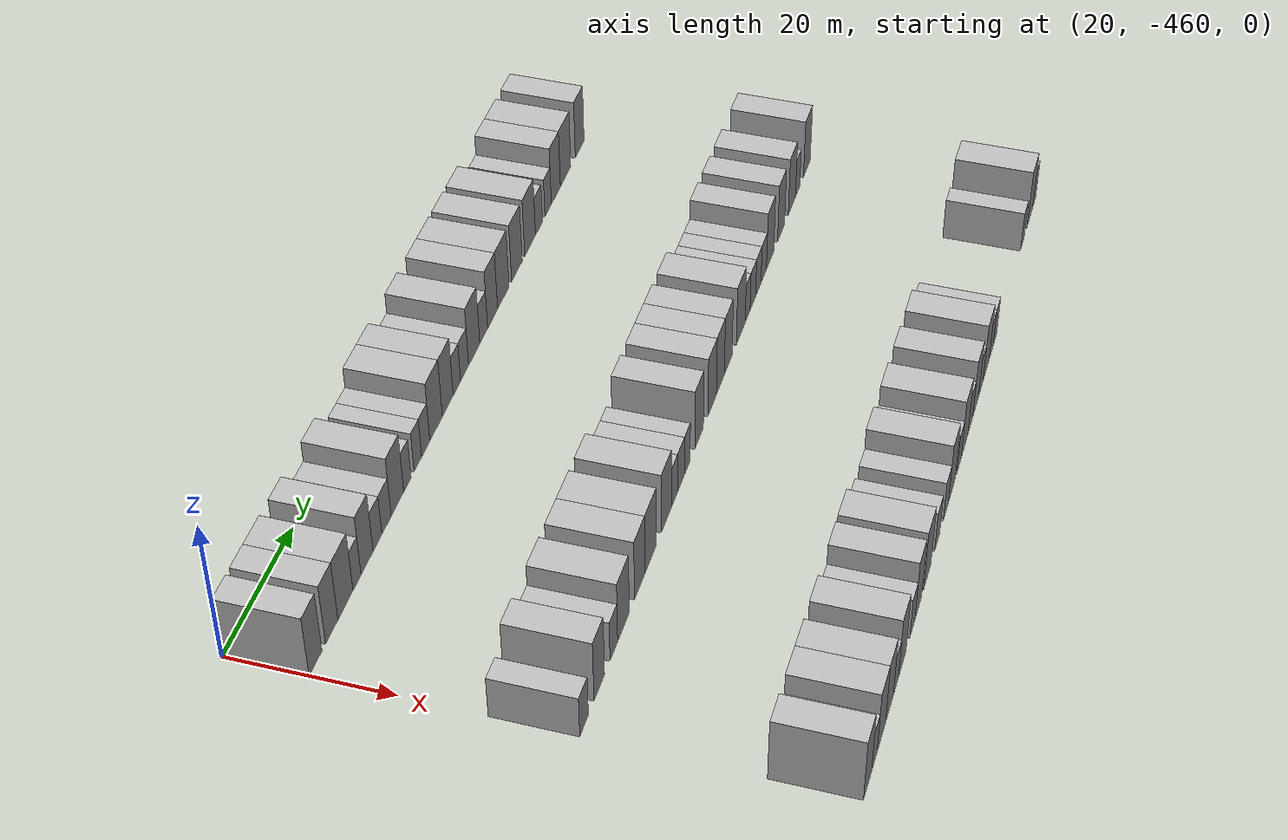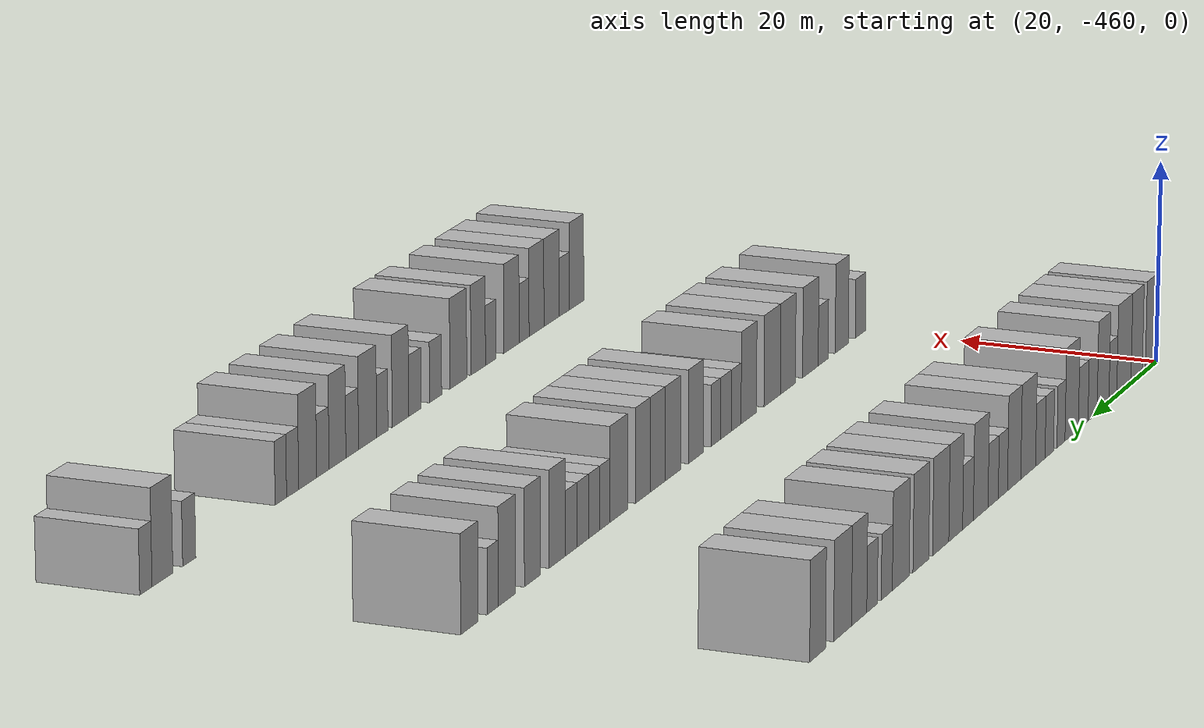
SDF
<sdf version="1.6">
 <world name="default">
  <model name="building_1">
   <static>1</static>
   <pose>25.0000 -458.1524 0 0.000000 0.000000 0.000000</pose>
   <link name="link">
    <pose>0 0 4.50 0 0 0</pose>
    <collision name="collision"><geometry><box><size>10.0000 3.6952 9.0000</size></box></geometry></collision>
    <visual name="visual">
     <cast_shadows>0</cast_shadows>
     <geometry><box><size>10.0000 3.6952 9.0000</size></box></geometry>
     <material>
      <script>
       <uri>model://HANNAS_wall/materials/scripts</uri>
       <uri>model://HANNAS_wall/materials/textures</uri>
       <name>vrc/HANNAS_wall</name>
      </script>
     </material>
    </visual>
   </link>
  </model>
  <model name="building_2">
   <static>1</static>
   <pose>25.0000 -453.4959 0 0.000000 0.000000 0.000000</pose>
   <link name="link">
    <pose>0 0 4.50 0 0 0</pose>
    <collision name="collision"><geometry><box><size>10.0000 3.6178 9.0000</size></box></geometry></collision>
    <visual name="visual">
     <cast_shadows>0</cast_shadows>
     <geometry><box><size>10.0000 3.6178 9.0000</size></box></geometry>
     <material>
      <script>
       <uri>model://HANNAS_wall/materials/scripts</uri>
       <uri>model://HANNAS_wall/materials/textures</uri>
       <name>vrc/HANNAS_wall</name>
      </script>
     </material>
    </visual>
   </link>
  </model>
  <model name="building_3">
   <static>1</static>
   <pose>25.0000 -449.4425 0 0.000000 0.000000 0.000000</pose>
   <link name="link">
    <pose>0 0 4.50 0 0 0</pose>
    <collision name="collision"><geometry><box><size>10.0000 4.4890 9.0000</size></box></geometry></collision>
    <visual name="visual">
     <cast_shadows>0</cast_shadows>
     <geometry><box><size>10.0000 4.4890 9.0000</size></box></geometry>
     <material>
      <script>
       <uri>model://HANNAS_wall/materials/scripts</uri>
       <uri>model://HANNAS_wall/materials/textures</uri>
       <name>vrc/HANNAS_wall</name>
      </script>
     </material>
    </visual>
   </link>
  </model>
  <model name="building_4">
   <static>1</static>
   <pose>25.0000 -445.9746 0 0.000000 0.000000 0.000000</pose>
   <link name="link">
    <pose>0 0 3.00 0 0 0</pose>
    <collision name="collision"><geometry><box><size>10.0000 2.4467 6.0000</size></box></geometry></collision>
    <visual name="visual">
     <cast_shadows>0</cast_shadows>
     <geometry><box><size>10.0000 2.4467 6.0000</size></box></geometry>
     <material>
      <script>
       <uri>model://HANNAS_wall/materials/scripts</uri>
       <uri>model://HANNAS_wall/materials/textures</uri>
       <name>vrc/HANNAS_wall</name>
      </script>
     </material>
    </visual>
   </link>
  </model>
  <model name="building_5">
   <static>1</static>
   <pose>25.0000 -442.9022 0 0.000000 0.000000 0.000000</pose>
   <link name="link">
    <pose>0 0 4.50 0 0 0</pose>
    <collision name="collision"><geometry><box><size>10.0000 3.6982 9.0000</size></box></geometry></collision>
    <visual name="visual">
     <cast_shadows>0</cast_shadows>
     <geometry><box><size>10.0000 3.6982 9.0000</size></box></geometry>
     <material>
      <script>
       <uri>model://HANNAS_wall/materials/scripts</uri>
       <uri>model://HANNAS_wall/materials/textures</uri>
       <name>vrc/HANNAS_wall</name>
      </script>
     </material>
    </visual>
   </link>
  </model>
  <model name="building_6">
   <static>1</static>
   <pose>25.0000 -439.6706 0 0.000000 0.000000 0.000000</pose>
   <link name="link">
    <pose>0 0 3.00 0 0 0</pose>
    <collision name="collision"><geometry><box><size>10.0000 2.7650 6.0000</size></box></geometry></collision>
    <visual name="visual">
     <cast_shadows>0</cast_shadows>
     <geometry><box><size>10.0000 2.7650 6.0000</size></box></geometry>
     <material>
      <script>
       <uri>model://HANNAS_wall/materials/scripts</uri>
       <uri>model://HANNAS_wall/materials/textures</uri>
       <name>vrc/HANNAS_wall</name>
      </script>
     </material>
    </visual>
   </link>
  </model>
  <model name="building_7">
   <static>1</static>
   <pose>25.0000 -436.8086 0 0.000000 0.000000 0.000000</pose>
   <link name="link">
    <pose>0 0 3.00 0 0 0</pose>
    <collision name="collision"><geometry><box><size>10.0000 2.9590 6.0000</size></box></geometry></collision>
    <visual name="visual">
     <cast_shadows>0</cast_shadows>
     <geometry><box><size>10.0000 2.9590 6.0000</size></box></geometry>
     <material>
      <script>
       <uri>model://HANNAS_wall/materials/scripts</uri>
       <uri>model://HANNAS_wall/materials/textures</uri>
       <name>vrc/HANNAS_wall</name>
      </script>
     </material>
    </visual>
   </link>
  </model>
  <model name="building_8">
   <static>1</static>
   <pose>25.0000 -433.3091 0 0.000000 0.000000 0.000000</pose>
   <link name="link">
    <pose>0 0 4.50 0 0 0</pose>
    <collision name="collision"><geometry><box><size>10.0000 4.0399 9.0000</size></box></geometry></collision>
    <visual name="visual">
     <cast_shadows>0</cast_shadows>
     <geometry><box><size>10.0000 4.0399 9.0000</size></box></geometry>
     <material>
      <script>
       <uri>model://HANNAS_wall/materials/scripts</uri>
       <uri>model://HANNAS_wall/materials/textures</uri>
       <name>vrc/HANNAS_wall</name>
      </script>
     </material>
    </visual>
   </link>
  </model>
  <model name="building_9">
   <static>1</static>
   <pose>25.0000 -430.0815 0 0.000000 0.000000 0.000000</pose>
   <link name="link">
    <pose>0 0 3.00 0 0 0</pose>
    <collision name="collision"><geometry><box><size>10.0000 2.4153 6.0000</size></box></geometry></collision>
    <visual name="visual">
     <cast_shadows>0</cast_shadows>
     <geometry><box><size>10.0000 2.4153 6.0000</size></box></geometry>
     <material>
      <script>
       <uri>model://HANNAS_wall/materials/scripts</uri>
       <uri>model://HANNAS_wall/materials/textures</uri>
       <name>vrc/HANNAS_wall</name>
      </script>
     </material>
    </visual>
   </link>
  </model>
  <model name="building_10">
   <static>1</static>
   <pose>25.0000 -426.6182 0 0.000000 0.000000 0.000000</pose>
   <link name="link">
    <pose>0 0 3.00 0 0 0</pose>
    <collision name="collision"><geometry><box><size>10.0000 2.5112 6.0000</size></box></geometry></collision>
    <visual name="visual">
     <cast_shadows>0</cast_shadows>
     <geometry><box><size>10.0000 2.5112 6.0000</size></box></geometry>
     <material>
      <script>
       <uri>model://HANNAS_wall/materials/scripts</uri>
       <uri>model://HANNAS_wall/materials/textures</uri>
       <name>vrc/HANNAS_wall</name>
      </script>
     </material>
    </visual>
   </link>
  </model>
  <model name="building_11">
   <static>1</static>
   <pose>25.0000 -423.9730 0 0.000000 0.000000 0.000000</pose>
   <link name="link">
    <pose>0 0 3.00 0 0 0</pose>
    <collision name="collision"><geometry><box><size>10.0000 2.7792 6.0000</size></box></geometry></collision>
    <visual name="visual">
     <cast_shadows>0</cast_shadows>
     <geometry><box><size>10.0000 2.7792 6.0000</size></box></geometry>
     <material>
      <script>
       <uri>model://HANNAS_wall/materials/scripts</uri>
       <uri>model://HANNAS_wall/materials/textures</uri>
       <name>vrc/HANNAS_wall</name>
      </script>
     </material>
    </visual>
   </link>
  </model>
  <model name="building_12">
   <static>1</static>
   <pose>25.0000 -420.4237 0 0.000000 0.000000 0.000000</pose>
   <link name="link">
    <pose>0 0 4.50 0 0 0</pose>
    <collision name="collision"><geometry><box><size>10.0000 4.3195 9.0000</size></box></geometry></collision>
    <visual name="visual">
     <cast_shadows>0</cast_shadows>
     <geometry><box><size>10.0000 4.3195 9.0000</size></box></geometry>
     <material>
      <script>
       <uri>model://HANNAS_wall/materials/scripts</uri>
       <uri>model://HANNAS_wall/materials/textures</uri>
       <name>vrc/HANNAS_wall</name>
      </script>
     </material>
    </visual>
   </link>
  </model>
  <model name="building_13">
   <static>1</static>
   <pose>25.0000 -416.3539 0 0.000000 0.000000 0.000000</pose>
   <link name="link">
    <pose>0 0 4.50 0 0 0</pose>
    <collision name="collision"><geometry><box><size>10.0000 3.8201 9.0000</size></box></geometry></collision>
    <visual name="visual">
     <cast_shadows>0</cast_shadows>
     <geometry><box><size>10.0000 3.8201 9.0000</size></box></geometry>
     <material>
      <script>
       <uri>model://HANNAS_wall/materials/scripts</uri>
       <uri>model://HANNAS_wall/materials/textures</uri>
       <name>vrc/HANNAS_wall</name>
      </script>
     </material>
    </visual>
   </link>
  </model>
  <model name="building_14">
   <static>1</static>
   <pose>25.0000 -413.1420 0 0.000000 0.000000 0.000000</pose>
   <link name="link">
    <pose>0 0 3.00 0 0 0</pose>
    <collision name="collision"><geometry><box><size>10.0000 2.6039 6.0000</size></box></geometry></collision>
    <visual name="visual">
     <cast_shadows>0</cast_shadows>
     <geometry><box><size>10.0000 2.6039 6.0000</size></box></geometry>
     <material>
      <script>
       <uri>model://HANNAS_wall/materials/scripts</uri>
       <uri>model://HANNAS_wall/materials/textures</uri>
       <name>vrc/HANNAS_wall</name>
      </script>
     </material>
    </visual>
   </link>
  </model>
  <model name="building_15">
   <static>1</static>
   <pose>25.0000 -410.3872 0 0.000000 0.000000 0.000000</pose>
   <link name="link">
    <pose>0 0 3.00 0 0 0</pose>
    <collision name="collision"><geometry><box><size>10.0000 2.9057 6.0000</size></box></geometry></collision>
    <visual name="visual">
     <cast_shadows>0</cast_shadows>
     <geometry><box><size>10.0000 2.9057 6.0000</size></box></geometry>
     <material>
      <script>
       <uri>model://HANNAS_wall/materials/scripts</uri>
       <uri>model://HANNAS_wall/materials/textures</uri>
       <name>vrc/HANNAS_wall</name>
      </script>
     </material>
    </visual>
   </link>
  </model>
  <model name="building_16">
   <static>1</static>
   <pose>25.0000 -406.8814 0 0.000000 0.000000 0.000000</pose>
   <link name="link">
    <pose>0 0 4.50 0 0 0</pose>
    <collision name="collision"><geometry><box><size>10.0000 4.1057 9.0000</size></box></geometry></collision>
    <visual name="visual">
     <cast_shadows>0</cast_shadows>
     <geometry><box><size>10.0000 4.1057 9.0000</size></box></geometry>
     <material>
      <script>
       <uri>model://HANNAS_wall/materials/scripts</uri>
       <uri>model://HANNAS_wall/materials/textures</uri>
       <name>vrc/HANNAS_wall</name>
      </script>
     </material>
    </visual>
   </link>
  </model>
  <model name="building_17">
   <static>1</static>
   <pose>25.0000 -403.3574 0 0.000000 0.000000 0.000000</pose>
   <link name="link">
    <pose>0 0 3.00 0 0 0</pose>
    <collision name="collision"><geometry><box><size>10.0000 2.9423 6.0000</size></box></geometry></collision>
    <visual name="visual">
     <cast_shadows>0</cast_shadows>
     <geometry><box><size>10.0000 2.9423 6.0000</size></box></geometry>
     <material>
      <script>
       <uri>model://HANNAS_wall/materials/scripts</uri>
       <uri>model://HANNAS_wall/materials/textures</uri>
       <name>vrc/HANNAS_wall</name>
      </script>
     </material>
    </visual>
   </link>
  </model>
  <model name="building_18">
   <static>1</static>
   <pose>25.0000 -399.9926 0 0.000000 0.000000 0.000000</pose>
   <link name="link">
    <pose>0 0 4.50 0 0 0</pose>
    <collision name="collision"><geometry><box><size>10.0000 3.7872 9.0000</size></box></geometry></collision>
    <visual name="visual">
     <cast_shadows>0</cast_shadows>
     <geometry><box><size>10.0000 3.7872 9.0000</size></box></geometry>
     <material>
      <script>
       <uri>model://HANNAS_wall/materials/scripts</uri>
       <uri>model://HANNAS_wall/materials/textures</uri>
       <name>vrc/HANNAS_wall</name>
      </script>
     </material>
    </visual>
   </link>
  </model>
  <model name="building_19">
   <static>1</static>
   <pose>25.0000 -395.8993 0 0.000000 0.000000 0.000000</pose>
   <link name="link">
    <pose>0 0 4.50 0 0 0</pose>
    <collision name="collision"><geometry><box><size>10.0000 4.3993 9.0000</size></box></geometry></collision>
    <visual name="visual">
     <cast_shadows>0</cast_shadows>
     <geometry><box><size>10.0000 4.3993 9.0000</size></box></geometry>
     <material>
      <script>
       <uri>model://HANNAS_wall/materials/scripts</uri>
       <uri>model://HANNAS_wall/materials/textures</uri>
       <name>vrc/HANNAS_wall</name>
      </script>
     </material>
    </visual>
   </link>
  </model>
  <model name="building_20">
   <static>1</static>
   <pose>25.0000 -390.5978 0 0.000000 0.000000 0.000000</pose>
   <link name="link">
    <pose>0 0 4.50 0 0 0</pose>
    <collision name="collision"><geometry><box><size>10.0000 4.2038 9.0000</size></box></geometry></collision>
    <visual name="visual">
     <cast_shadows>0</cast_shadows>
     <geometry><box><size>10.0000 4.2038 9.0000</size></box></geometry>
     <material>
      <script>
       <uri>model://HANNAS_wall/materials/scripts</uri>
       <uri>model://HANNAS_wall/materials/textures</uri>
       <name>vrc/HANNAS_wall</name>
      </script>
     </material>
    </visual>
   </link>
  </model>
  <model name="building_21">
   <static>1</static>
   <pose>25.0000 -385.3042 0 0.000000 0.000000 0.000000</pose>
   <link name="link">
    <pose>0 0 4.50 0 0 0</pose>
    <collision name="collision"><geometry><box><size>10.0000 4.3834 9.0000</size></box></geometry></collision>
    <visual name="visual">
     <cast_shadows>0</cast_shadows>
     <geometry><box><size>10.0000 4.3834 9.0000</size></box></geometry>
     <material>
      <script>
       <uri>model://HANNAS_wall/materials/scripts</uri>
       <uri>model://HANNAS_wall/materials/textures</uri>
       <name>vrc/HANNAS_wall</name>
      </script>
     </material>
    </visual>
   </link>
  </model>
  <model name="building_22">
   <static>1</static>
   <pose>25.0000 -381.6776 0 0.000000 0.000000 0.000000</pose>
   <link name="link">
    <pose>0 0 3.00 0 0 0</pose>
    <collision name="collision"><geometry><box><size>10.0000 2.8699 6.0000</size></box></geometry></collision>
    <visual name="visual">
     <cast_shadows>0</cast_shadows>
     <geometry><box><size>10.0000 2.8699 6.0000</size></box></geometry>
     <material>
      <script>
       <uri>model://HANNAS_wall/materials/scripts</uri>
       <uri>model://HANNAS_wall/materials/textures</uri>
       <name>vrc/HANNAS_wall</name>
      </script>
     </material>
    </visual>
   </link>
  </model>
  <model name="building_23">
   <static>1</static>
   <pose>25.0000 -377.8964 0 0.000000 0.000000 0.000000</pose>
   <link name="link">
    <pose>0 0 3.00 0 0 0</pose>
    <collision name="collision"><geometry><box><size>10.0000 2.6924 6.0000</size></box></geometry></collision>
    <visual name="visual">
     <cast_shadows>0</cast_shadows>
     <geometry><box><size>10.0000 2.6924 6.0000</size></box></geometry>
     <material>
      <script>
       <uri>model://HANNAS_wall/materials/scripts</uri>
       <uri>model://HANNAS_wall/materials/textures</uri>
       <name>vrc/HANNAS_wall</name>
      </script>
     </material>
    </visual>
   </link>
  </model>
  <model name="building_24">
   <static>1</static>
   <pose>25.0000 -374.6292 0 0.000000 0.000000 0.000000</pose>
   <link name="link">
    <pose>0 0 4.50 0 0 0</pose>
    <collision name="collision"><geometry><box><size>10.0000 3.8420 9.0000</size></box></geometry></collision>
    <visual name="visual">
     <cast_shadows>0</cast_shadows>
     <geometry><box><size>10.0000 3.8420 9.0000</size></box></geometry>
     <material>
      <script>
       <uri>model://HANNAS_wall/materials/scripts</uri>
       <uri>model://HANNAS_wall/materials/textures</uri>
       <name>vrc/HANNAS_wall</name>
      </script>
     </material>
    </visual>
   </link>
  </model>
  <model name="building_25">
   <static>1</static>
   <pose>25.0000 -370.4790 0 0.000000 0.000000 0.000000</pose>
   <link name="link">
    <pose>0 0 4.50 0 0 0</pose>
    <collision name="collision"><geometry><box><size>10.0000 4.4584 9.0000</size></box></geometry></collision>
    <visual name="visual">
     <cast_shadows>0</cast_shadows>
     <geometry><box><size>10.0000 4.4584 9.0000</size></box></geometry>
     <material>
      <script>
       <uri>model://HANNAS_wall/materials/scripts</uri>
       <uri>model://HANNAS_wall/materials/textures</uri>
       <name>vrc/HANNAS_wall</name>
      </script>
     </material>
    </visual>
   </link>
  </model>
  <model name="building_26">
   <static>1</static>
   <pose>25.0000 -364.3102 0 0.000000 0.000000 0.000000</pose>
   <link name="link">
    <pose>0 0 4.50 0 0 0</pose>
    <collision name="collision"><geometry><box><size>10.0000 3.8792 9.0000</size></box></geometry></collision>
    <visual name="visual">
     <cast_shadows>0</cast_shadows>
     <geometry><box><size>10.0000 3.8792 9.0000</size></box></geometry>
     <material>
      <script>
       <uri>model://HANNAS_wall/materials/scripts</uri>
       <uri>model://HANNAS_wall/materials/textures</uri>
       <name>vrc/HANNAS_wall</name>
      </script>
     </material>
    </visual>
   </link>
  </model>
  <model name="building_227">
   <static>1</static>
   <pose>55.0000 -458.5022 0 0.000000 0.000000 0.000000</pose>
   <link name="link">
    <pose>0 0 3.00 0 0 0</pose>
    <collision name="collision"><geometry><box><size>10.0000 2.9957 6.0000</size></box></geometry></collision>
    <visual name="visual">
     <cast_shadows>0</cast_shadows>
     <geometry><box><size>10.0000 2.9957 6.0000</size></box></geometry>
     <material>
      <script>
       <uri>model://HANNAS_wall/materials/scripts</uri>
       <uri>model://HANNAS_wall/materials/textures</uri>
       <name>vrc/HANNAS_wall</name>
      </script>
     </material>
    </visual>
   </link>
  </model>
  <model name="building_228">
   <static>1</static>
   <pose>55.0000 -453.1236 0 0.000000 0.000000 0.000000</pose>
   <link name="link">
    <pose>0 0 4.50 0 0 0</pose>
    <collision name="collision"><geometry><box><size>10.0000 3.7614 9.0000</size></box></geometry></collision>
    <visual name="visual">
     <cast_shadows>0</cast_shadows>
     <geometry><box><size>10.0000 3.7614 9.0000</size></box></geometry>
     <material>
      <script>
       <uri>model://HANNAS_wall/materials/scripts</uri>
       <uri>model://HANNAS_wall/materials/textures</uri>
       <name>vrc/HANNAS_wall</name>
      </script>
     </material>
    </visual>
   </link>
  </model>
  <model name="building_229">
   <static>1</static>
   <pose>55.0000 -447.8356 0 0.000000 0.000000 0.000000</pose>
   <link name="link">
    <pose>0 0 3.00 0 0 0</pose>
    <collision name="collision"><geometry><box><size>10.0000 2.8146 6.0000</size></box></geometry></collision>
    <visual name="visual">
     <cast_shadows>0</cast_shadows>
     <geometry><box><size>10.0000 2.8146 6.0000</size></box></geometry>
     <material>
      <script>
       <uri>model://HANNAS_wall/materials/scripts</uri>
       <uri>model://HANNAS_wall/materials/textures</uri>
       <name>vrc/HANNAS_wall</name>
      </script>
     </material>
    </visual>
   </link>
  </model>
  <model name="building_230">
   <static>1</static>
   <pose>55.0000 -444.2444 0 0.000000 0.000000 0.000000</pose>
   <link name="link">
    <pose>0 0 4.50 0 0 0</pose>
    <collision name="collision"><geometry><box><size>10.0000 4.3679 9.0000</size></box></geometry></collision>
    <visual name="visual">
     <cast_shadows>0</cast_shadows>
     <geometry><box><size>10.0000 4.3679 9.0000</size></box></geometry>
     <material>
      <script>
       <uri>model://HANNAS_wall/materials/scripts</uri>
       <uri>model://HANNAS_wall/materials/textures</uri>
       <name>vrc/HANNAS_wall</name>
      </script>
     </material>
    </visual>
   </link>
  </model>
  <model name="building_231">
   <static>1</static>
   <pose>55.0000 -438.0049 0 0.000000 0.000000 0.000000</pose>
   <link name="link">
    <pose>0 0 4.50 0 0 0</pose>
    <collision name="collision"><geometry><box><size>10.0000 4.1109 9.0000</size></box></geometry></collision>
    <visual name="visual">
     <cast_shadows>0</cast_shadows>
     <geometry><box><size>10.0000 4.1109 9.0000</size></box></geometry>
     <material>
      <script>
       <uri>model://HANNAS_wall/materials/scripts</uri>
       <uri>model://HANNAS_wall/materials/textures</uri>
       <name>vrc/HANNAS_wall</name>
      </script>
     </material>
    </visual>
   </link>
  </model>
  <model name="building_232">
   <static>1</static>
   <pose>55.0000 -433.7033 0 0.000000 0.000000 0.000000</pose>
   <link name="link">
    <pose>0 0 4.50 0 0 0</pose>
    <collision name="collision"><geometry><box><size>10.0000 4.4923 9.0000</size></box></geometry></collision>
    <visual name="visual">
     <cast_shadows>0</cast_shadows>
     <geometry><box><size>10.0000 4.4923 9.0000</size></box></geometry>
     <material>
      <script>
       <uri>model://HANNAS_wall/materials/scripts</uri>
       <uri>model://HANNAS_wall/materials/textures</uri>
       <name>vrc/HANNAS_wall</name>
      </script>
     </material>
    </visual>
   </link>
  </model>
  <model name="building_233">
   <static>1</static>
   <pose>55.0000 -427.4035 0 0.000000 0.000000 0.000000</pose>
   <link name="link">
    <pose>0 0 4.50 0 0 0</pose>
    <collision name="collision"><geometry><box><size>10.0000 4.1073 9.0000</size></box></geometry></collision>
    <visual name="visual">
     <cast_shadows>0</cast_shadows>
     <geometry><box><size>10.0000 4.1073 9.0000</size></box></geometry>
     <material>
      <script>
       <uri>model://HANNAS_wall/materials/scripts</uri>
       <uri>model://HANNAS_wall/materials/textures</uri>
       <name>vrc/HANNAS_wall</name>
      </script>
     </material>
    </visual>
   </link>
  </model>
  <model name="building_234">
   <static>1</static>
   <pose>55.0000 -424.0857 0 0.000000 0.000000 0.000000</pose>
   <link name="link">
    <pose>0 0 3.00 0 0 0</pose>
    <collision name="collision"><geometry><box><size>10.0000 2.5282 6.0000</size></box></geometry></collision>
    <visual name="visual">
     <cast_shadows>0</cast_shadows>
     <geometry><box><size>10.0000 2.5282 6.0000</size></box></geometry>
     <material>
      <script>
       <uri>model://HANNAS_wall/materials/scripts</uri>
       <uri>model://HANNAS_wall/materials/textures</uri>
       <name>vrc/HANNAS_wall</name>
      </script>
     </material>
    </visual>
   </link>
  </model>
  <model name="building_235">
   <static>1</static>
   <pose>55.0000 -421.3431 0 0.000000 0.000000 0.000000</pose>
   <link name="link">
    <pose>0 0 3.00 0 0 0</pose>
    <collision name="collision"><geometry><box><size>10.0000 2.9572 6.0000</size></box></geometry></collision>
    <visual name="visual">
     <cast_shadows>0</cast_shadows>
     <geometry><box><size>10.0000 2.9572 6.0000</size></box></geometry>
     <material>
      <script>
       <uri>model://HANNAS_wall/materials/scripts</uri>
       <uri>model://HANNAS_wall/materials/textures</uri>
       <name>vrc/HANNAS_wall</name>
      </script>
     </material>
    </visual>
   </link>
  </model>
  <model name="building_236">
   <static>1</static>
   <pose>55.0000 -418.6470 0 0.000000 0.000000 0.000000</pose>
   <link name="link">
    <pose>0 0 3.00 0 0 0</pose>
    <collision name="collision"><geometry><box><size>10.0000 2.4350 6.0000</size></box></geometry></collision>
    <visual name="visual">
     <cast_shadows>0</cast_shadows>
     <geometry><box><size>10.0000 2.4350 6.0000</size></box></geometry>
     <material>
      <script>
       <uri>model://HANNAS_wall/materials/scripts</uri>
       <uri>model://HANNAS_wall/materials/textures</uri>
       <name>vrc/HANNAS_wall</name>
      </script>
     </material>
    </visual>
   </link>
  </model>
  <model name="building_237">
   <static>1</static>
   <pose>55.0000 -413.5474 0 0.000000 0.000000 0.000000</pose>
   <link name="link">
    <pose>0 0 4.50 0 0 0</pose>
    <collision name="collision"><geometry><box><size>10.0000 3.7642 9.0000</size></box></geometry></collision>
    <visual name="visual">
     <cast_shadows>0</cast_shadows>
     <geometry><box><size>10.0000 3.7642 9.0000</size></box></geometry>
     <material>
      <script>
       <uri>model://HANNAS_wall/materials/scripts</uri>
       <uri>model://HANNAS_wall/materials/textures</uri>
       <name>vrc/HANNAS_wall</name>
      </script>
     </material>
    </visual>
   </link>
  </model>
  <model name="building_238">
   <static>1</static>
   <pose>55.0000 -407.7416 0 0.000000 0.000000 0.000000</pose>
   <link name="link">
    <pose>0 0 4.50 0 0 0</pose>
    <collision name="collision"><geometry><box><size>10.0000 3.8473 9.0000</size></box></geometry></collision>
    <visual name="visual">
     <cast_shadows>0</cast_shadows>
     <geometry><box><size>10.0000 3.8473 9.0000</size></box></geometry>
     <material>
      <script>
       <uri>model://HANNAS_wall/materials/scripts</uri>
       <uri>model://HANNAS_wall/materials/textures</uri>
       <name>vrc/HANNAS_wall</name>
      </script>
     </material>
    </visual>
   </link>
  </model>
  <model name="building_239">
   <static>1</static>
   <pose>55.0000 -403.9809 0 0.000000 0.000000 0.000000</pose>
   <link name="link">
    <pose>0 0 4.50 0 0 0</pose>
    <collision name="collision"><geometry><box><size>10.0000 3.6741 9.0000</size></box></geometry></collision>
    <visual name="visual">
     <cast_shadows>0</cast_shadows>
     <geometry><box><size>10.0000 3.6741 9.0000</size></box></geometry>
     <material>
      <script>
       <uri>model://HANNAS_wall/materials/scripts</uri>
       <uri>model://HANNAS_wall/materials/textures</uri>
       <name>vrc/HANNAS_wall</name>
      </script>
     </material>
    </visual>
   </link>
  </model>
  <model name="building_240">
   <static>1</static>
   <pose>55.0000 -400.3345 0 0.000000 0.000000 0.000000</pose>
   <link name="link">
    <pose>0 0 4.50 0 0 0</pose>
    <collision name="collision"><geometry><box><size>10.0000 3.6187 9.0000</size></box></geometry></collision>
    <visual name="visual">
     <cast_shadows>0</cast_shadows>
     <geometry><box><size>10.0000 3.6187 9.0000</size></box></geometry>
     <material>
      <script>
       <uri>model://HANNAS_wall/materials/scripts</uri>
       <uri>model://HANNAS_wall/materials/textures</uri>
       <name>vrc/HANNAS_wall</name>
      </script>
     </material>
    </visual>
   </link>
  </model>
  <model name="building_241">
   <static>1</static>
   <pose>55.0000 -394.4001 0 0.000000 0.000000 0.000000</pose>
   <link name="link">
    <pose>0 0 4.50 0 0 0</pose>
    <collision name="collision"><geometry><box><size>10.0000 4.2503 9.0000</size></box></geometry></collision>
    <visual name="visual">
     <cast_shadows>0</cast_shadows>
     <geometry><box><size>10.0000 4.2503 9.0000</size></box></geometry>
     <material>
      <script>
       <uri>model://HANNAS_wall/materials/scripts</uri>
       <uri>model://HANNAS_wall/materials/textures</uri>
       <name>vrc/HANNAS_wall</name>
      </script>
     </material>
    </visual>
   </link>
  </model>
  <model name="building_242">
   <static>1</static>
   <pose>55.0000 -391.0721 0 0.000000 0.000000 0.000000</pose>
   <link name="link">
    <pose>0 0 3.00 0 0 0</pose>
    <collision name="collision"><geometry><box><size>10.0000 2.4057 6.0000</size></box></geometry></collision>
    <visual name="visual">
     <cast_shadows>0</cast_shadows>
     <geometry><box><size>10.0000 2.4057 6.0000</size></box></geometry>
     <material>
      <script>
       <uri>model://HANNAS_wall/materials/scripts</uri>
       <uri>model://HANNAS_wall/materials/textures</uri>
       <name>vrc/HANNAS_wall</name>
      </script>
     </material>
    </visual>
   </link>
  </model>
  <model name="building_243">
   <static>1</static>
   <pose>55.0000 -388.5110 0 0.000000 0.000000 0.000000</pose>
   <link name="link">
    <pose>0 0 3.00 0 0 0</pose>
    <collision name="collision"><geometry><box><size>10.0000 2.7165 6.0000</size></box></geometry></collision>
    <visual name="visual">
     <cast_shadows>0</cast_shadows>
     <geometry><box><size>10.0000 2.7165 6.0000</size></box></geometry>
     <material>
      <script>
       <uri>model://HANNAS_wall/materials/scripts</uri>
       <uri>model://HANNAS_wall/materials/textures</uri>
       <name>vrc/HANNAS_wall</name>
      </script>
     </material>
    </visual>
   </link>
  </model>
  <model name="building_244">
   <static>1</static>
   <pose>55.0000 -385.8160 0 0.000000 0.000000 0.000000</pose>
   <link name="link">
    <pose>0 0 3.00 0 0 0</pose>
    <collision name="collision"><geometry><box><size>10.0000 2.6734 6.0000</size></box></geometry></collision>
    <visual name="visual">
     <cast_shadows>0</cast_shadows>
     <geometry><box><size>10.0000 2.6734 6.0000</size></box></geometry>
     <material>
      <script>
       <uri>model://HANNAS_wall/materials/scripts</uri>
       <uri>model://HANNAS_wall/materials/textures</uri>
       <name>vrc/HANNAS_wall</name>
      </script>
     </material>
    </visual>
   </link>
  </model>
  <model name="building_245">
   <static>1</static>
   <pose>55.0000 -383.1032 0 0.000000 0.000000 0.000000</pose>
   <link name="link">
    <pose>0 0 3.00 0 0 0</pose>
    <collision name="collision"><geometry><box><size>10.0000 2.7522 6.0000</size></box></geometry></collision>
    <visual name="visual">
     <cast_shadows>0</cast_shadows>
     <geometry><box><size>10.0000 2.7522 6.0000</size></box></geometry>
     <material>
      <script>
       <uri>model://HANNAS_wall/materials/scripts</uri>
       <uri>model://HANNAS_wall/materials/textures</uri>
       <name>vrc/HANNAS_wall</name>
      </script>
     </material>
    </visual>
   </link>
  </model>
  <model name="building_246">
   <static>1</static>
   <pose>55.0000 -379.8607 0 0.000000 0.000000 0.000000</pose>
   <link name="link">
    <pose>0 0 4.50 0 0 0</pose>
    <collision name="collision"><geometry><box><size>10.0000 3.7327 9.0000</size></box></geometry></collision>
    <visual name="visual">
     <cast_shadows>0</cast_shadows>
     <geometry><box><size>10.0000 3.7327 9.0000</size></box></geometry>
     <material>
      <script>
       <uri>model://HANNAS_wall/materials/scripts</uri>
       <uri>model://HANNAS_wall/materials/textures</uri>
       <name>vrc/HANNAS_wall</name>
      </script>
     </material>
    </visual>
   </link>
  </model>
  <model name="building_247">
   <static>1</static>
   <pose>55.0000 -374.1658 0 0.000000 0.000000 0.000000</pose>
   <link name="link">
    <pose>0 0 4.50 0 0 0</pose>
    <collision name="collision"><geometry><box><size>10.0000 3.6570 9.0000</size></box></geometry></collision>
    <visual name="visual">
     <cast_shadows>0</cast_shadows>
     <geometry><box><size>10.0000 3.6570 9.0000</size></box></geometry>
     <material>
      <script>
       <uri>model://HANNAS_wall/materials/scripts</uri>
       <uri>model://HANNAS_wall/materials/textures</uri>
       <name>vrc/HANNAS_wall</name>
      </script>
     </material>
    </visual>
   </link>
  </model>
  <model name="building_248">
   <static>1</static>
   <pose>55.0000 -368.4163 0 0.000000 0.000000 0.000000</pose>
   <link name="link">
    <pose>0 0 4.50 0 0 0</pose>
    <collision name="collision"><geometry><box><size>10.0000 3.8421 9.0000</size></box></geometry></collision>
    <visual name="visual">
     <cast_shadows>0</cast_shadows>
     <geometry><box><size>10.0000 3.8421 9.0000</size></box></geometry>
     <material>
      <script>
       <uri>model://HANNAS_wall/materials/scripts</uri>
       <uri>model://HANNAS_wall/materials/textures</uri>
       <name>vrc/HANNAS_wall</name>
      </script>
     </material>
    </visual>
   </link>
  </model>
  <model name="building_249">
   <static>1</static>
   <pose>55.0000 -365.2773 0 0.000000 0.000000 0.000000</pose>
   <link name="link">
    <pose>0 0 3.00 0 0 0</pose>
    <collision name="collision"><geometry><box><size>10.0000 2.4360 6.0000</size></box></geometry></collision>
    <visual name="visual">
     <cast_shadows>0</cast_shadows>
     <geometry><box><size>10.0000 2.4360 6.0000</size></box></geometry>
     <material>
      <script>
       <uri>model://HANNAS_wall/materials/scripts</uri>
       <uri>model://HANNAS_wall/materials/textures</uri>
       <name>vrc/HANNAS_wall</name>
      </script>
     </material>
    </visual>
   </link>
  </model>
  <model name="building_250">
   <static>1</static>
   <pose>55.0000 -360.1625 0 0.000000 0.000000 0.000000</pose>
   <link name="link">
    <pose>0 0 4.50 0 0 0</pose>
    <collision name="collision"><geometry><box><size>10.0000 3.7934 9.0000</size></box></geometry></collision>
    <visual name="visual">
     <cast_shadows>0</cast_shadows>
     <geometry><box><size>10.0000 3.7934 9.0000</size></box></geometry>
     <material>
      <script>
       <uri>model://HANNAS_wall/materials/scripts</uri>
       <uri>model://HANNAS_wall/materials/textures</uri>
       <name>vrc/HANNAS_wall</name>
      </script>
     </material>
    </visual>
   </link>
  </model>
  <model name="building_459">
   <static>1</static>
   <pose>85.0000 -458.1022 0 0.000000 0.000000 0.000000</pose>
   <link name="link">
    <pose>0 0 4.50 0 0 0</pose>
    <collision name="collision"><geometry><box><size>10.0000 3.7957 9.0000</size></box></geometry></collision>
    <visual name="visual">
     <cast_shadows>0</cast_shadows>
     <geometry><box><size>10.0000 3.7957 9.0000</size></box></geometry>
     <material>
      <script>
       <uri>model://HANNAS_wall/materials/scripts</uri>
       <uri>model://HANNAS_wall/materials/textures</uri>
       <name>vrc/HANNAS_wall</name>
      </script>
     </material>
    </visual>
   </link>
  </model>
  <model name="building_460">
   <static>1</static>
   <pose>85.0000 -454.8898 0 0.000000 0.000000 0.000000</pose>
   <link name="link">
    <pose>0 0 3.00 0 0 0</pose>
    <collision name="collision"><geometry><box><size>10.0000 2.6291 6.0000</size></box></geometry></collision>
    <visual name="visual">
     <cast_shadows>0</cast_shadows>
     <geometry><box><size>10.0000 2.6291 6.0000</size></box></geometry>
     <material>
      <script>
       <uri>model://HANNAS_wall/materials/scripts</uri>
       <uri>model://HANNAS_wall/materials/textures</uri>
       <name>vrc/HANNAS_wall</name>
      </script>
     </material>
    </visual>
   </link>
  </model>
  <model name="building_461">
   <static>1</static>
   <pose>85.0000 -451.5593 0 0.000000 0.000000 0.000000</pose>
   <link name="link">
    <pose>0 0 4.50 0 0 0</pose>
    <collision name="collision"><geometry><box><size>10.0000 4.0319 9.0000</size></box></geometry></collision>
    <visual name="visual">
     <cast_shadows>0</cast_shadows>
     <geometry><box><size>10.0000 4.0319 9.0000</size></box></geometry>
     <material>
      <script>
       <uri>model://HANNAS_wall/materials/scripts</uri>
       <uri>model://HANNAS_wall/materials/textures</uri>
       <name>vrc/HANNAS_wall</name>
      </script>
     </material>
    </visual>
   </link>
  </model>
  <model name="building_462">
   <static>1</static>
   <pose>85.0000 -447.6206 0 0.000000 0.000000 0.000000</pose>
   <link name="link">
    <pose>0 0 4.50 0 0 0</pose>
    <collision name="collision"><geometry><box><size>10.0000 3.8457 9.0000</size></box></geometry></collision>
    <visual name="visual">
     <cast_shadows>0</cast_shadows>
     <geometry><box><size>10.0000 3.8457 9.0000</size></box></geometry>
     <material>
      <script>
       <uri>model://HANNAS_wall/materials/scripts</uri>
       <uri>model://HANNAS_wall/materials/textures</uri>
       <name>vrc/HANNAS_wall</name>
      </script>
     </material>
    </visual>
   </link>
  </model>
  <model name="building_463">
   <static>1</static>
   <pose>85.0000 -444.4341 0 0.000000 0.000000 0.000000</pose>
   <link name="link">
    <pose>0 0 3.00 0 0 0</pose>
    <collision name="collision"><geometry><box><size>10.0000 2.5273 6.0000</size></box></geometry></collision>
    <visual name="visual">
     <cast_shadows>0</cast_shadows>
     <geometry><box><size>10.0000 2.5273 6.0000</size></box></geometry>
     <material>
      <script>
       <uri>model://HANNAS_wall/materials/scripts</uri>
       <uri>model://HANNAS_wall/materials/textures</uri>
       <name>vrc/HANNAS_wall</name>
      </script>
     </material>
    </visual>
   </link>
  </model>
  <model name="building_464">
   <static>1</static>
   <pose>85.0000 -441.2378 0 0.000000 0.000000 0.000000</pose>
   <link name="link">
    <pose>0 0 4.50 0 0 0</pose>
    <collision name="collision"><geometry><box><size>10.0000 3.8652 9.0000</size></box></geometry></collision>
    <visual name="visual">
     <cast_shadows>0</cast_shadows>
     <geometry><box><size>10.0000 3.8652 9.0000</size></box></geometry>
     <material>
      <script>
       <uri>model://HANNAS_wall/materials/scripts</uri>
       <uri>model://HANNAS_wall/materials/textures</uri>
       <name>vrc/HANNAS_wall</name>
      </script>
     </material>
    </visual>
   </link>
  </model>
  <model name="building_465">
   <static>1</static>
   <pose>85.0000 -435.9963 0 0.000000 0.000000 0.000000</pose>
   <link name="link">
    <pose>0 0 3.00 0 0 0</pose>
    <collision name="collision"><geometry><box><size>10.0000 2.6178 6.0000</size></box></geometry></collision>
    <visual name="visual">
     <cast_shadows>0</cast_shadows>
     <geometry><box><size>10.0000 2.6178 6.0000</size></box></geometry>
     <material>
      <script>
       <uri>model://HANNAS_wall/materials/scripts</uri>
       <uri>model://HANNAS_wall/materials/textures</uri>
       <name>vrc/HANNAS_wall</name>
      </script>
     </material>
    </visual>
   </link>
  </model>
  <model name="building_466">
   <static>1</static>
   <pose>85.0000 -432.8842 0 0.000000 0.000000 0.000000</pose>
   <link name="link">
    <pose>0 0 4.50 0 0 0</pose>
    <collision name="collision"><geometry><box><size>10.0000 3.6064 9.0000</size></box></geometry></collision>
    <visual name="visual">
     <cast_shadows>0</cast_shadows>
     <geometry><box><size>10.0000 3.6064 9.0000</size></box></geometry>
     <material>
      <script>
       <uri>model://HANNAS_wall/materials/scripts</uri>
       <uri>model://HANNAS_wall/materials/textures</uri>
       <name>vrc/HANNAS_wall</name>
      </script>
     </material>
    </visual>
   </link>
  </model>
  <model name="building_467">
   <static>1</static>
   <pose>85.0000 -428.0140 0 0.000000 0.000000 0.000000</pose>
   <link name="link">
    <pose>0 0 4.50 0 0 0</pose>
    <collision name="collision"><geometry><box><size>10.0000 4.1339 9.0000</size></box></geometry></collision>
    <visual name="visual">
     <cast_shadows>0</cast_shadows>
     <geometry><box><size>10.0000 4.1339 9.0000</size></box></geometry>
     <material>
      <script>
       <uri>model://HANNAS_wall/materials/scripts</uri>
       <uri>model://HANNAS_wall/materials/textures</uri>
       <name>vrc/HANNAS_wall</name>
      </script>
     </material>
    </visual>
   </link>
  </model>
  <model name="building_468">
   <static>1</static>
   <pose>85.0000 -422.4973 0 0.000000 0.000000 0.000000</pose>
   <link name="link">
    <pose>0 0 3.00 0 0 0</pose>
    <collision name="collision"><geometry><box><size>10.0000 2.8995 6.0000</size></box></geometry></collision>
    <visual name="visual">
     <cast_shadows>0</cast_shadows>
     <geometry><box><size>10.0000 2.8995 6.0000</size></box></geometry>
     <material>
      <script>
       <uri>model://HANNAS_wall/materials/scripts</uri>
       <uri>model://HANNAS_wall/materials/textures</uri>
       <name>vrc/HANNAS_wall</name>
      </script>
     </material>
    </visual>
   </link>
  </model>
  <model name="building_469">
   <static>1</static>
   <pose>85.0000 -417.5792 0 0.000000 0.000000 0.000000</pose>
   <link name="link">
    <pose>0 0 3.00 0 0 0</pose>
    <collision name="collision"><geometry><box><size>10.0000 2.9367 6.0000</size></box></geometry></collision>
    <visual name="visual">
     <cast_shadows>0</cast_shadows>
     <geometry><box><size>10.0000 2.9367 6.0000</size></box></geometry>
     <material>
      <script>
       <uri>model://HANNAS_wall/materials/scripts</uri>
       <uri>model://HANNAS_wall/materials/textures</uri>
       <name>vrc/HANNAS_wall</name>
      </script>
     </material>
    </visual>
   </link>
  </model>
  <model name="building_470">
   <static>1</static>
   <pose>85.0000 -414.1651 0 0.000000 0.000000 0.000000</pose>
   <link name="link">
    <pose>0 0 4.50 0 0 0</pose>
    <collision name="collision"><geometry><box><size>10.0000 3.8913 9.0000</size></box></geometry></collision>
    <visual name="visual">
     <cast_shadows>0</cast_shadows>
     <geometry><box><size>10.0000 3.8913 9.0000</size></box></geometry>
     <material>
      <script>
       <uri>model://HANNAS_wall/materials/scripts</uri>
       <uri>model://HANNAS_wall/materials/textures</uri>
       <name>vrc/HANNAS_wall</name>
      </script>
     </material>
    </visual>
   </link>
  </model>
  <model name="building_471">
   <static>1</static>
   <pose>85.0000 -409.9226 0 0.000000 0.000000 0.000000</pose>
   <link name="link">
    <pose>0 0 3.00 0 0 0</pose>
    <collision name="collision"><geometry><box><size>10.0000 2.5938 6.0000</size></box></geometry></collision>
    <visual name="visual">
     <cast_shadows>0</cast_shadows>
     <geometry><box><size>10.0000 2.5938 6.0000</size></box></geometry>
     <material>
      <script>
       <uri>model://HANNAS_wall/materials/scripts</uri>
       <uri>model://HANNAS_wall/materials/textures</uri>
       <name>vrc/HANNAS_wall</name>
      </script>
     </material>
    </visual>
   </link>
  </model>
  <model name="building_472">
   <static>1</static>
   <pose>85.0000 -406.5445 0 0.000000 0.000000 0.000000</pose>
   <link name="link">
    <pose>0 0 4.50 0 0 0</pose>
    <collision name="collision"><geometry><box><size>10.0000 4.1625 9.0000</size></box></geometry></collision>
    <visual name="visual">
     <cast_shadows>0</cast_shadows>
     <geometry><box><size>10.0000 4.1625 9.0000</size></box></geometry>
     <material>
      <script>
       <uri>model://HANNAS_wall/materials/scripts</uri>
       <uri>model://HANNAS_wall/materials/textures</uri>
       <name>vrc/HANNAS_wall</name>
      </script>
     </material>
    </visual>
   </link>
  </model>
  <model name="building_473">
   <static>1</static>
   <pose>85.0000 -403.0198 0 0.000000 0.000000 0.000000</pose>
   <link name="link">
    <pose>0 0 3.00 0 0 0</pose>
    <collision name="collision"><geometry><box><size>10.0000 2.8869 6.0000</size></box></geometry></collision>
    <visual name="visual">
     <cast_shadows>0</cast_shadows>
     <geometry><box><size>10.0000 2.8869 6.0000</size></box></geometry>
     <material>
      <script>
       <uri>model://HANNAS_wall/materials/scripts</uri>
       <uri>model://HANNAS_wall/materials/textures</uri>
       <name>vrc/HANNAS_wall</name>
      </script>
     </material>
    </visual>
   </link>
  </model>
  <model name="building_474">
   <static>1</static>
   <pose>85.0000 -399.6921 0 0.000000 0.000000 0.000000</pose>
   <link name="link">
    <pose>0 0 4.50 0 0 0</pose>
    <collision name="collision"><geometry><box><size>10.0000 3.7686 9.0000</size></box></geometry></collision>
    <visual name="visual">
     <cast_shadows>0</cast_shadows>
     <geometry><box><size>10.0000 3.7686 9.0000</size></box></geometry>
     <material>
      <script>
       <uri>model://HANNAS_wall/materials/scripts</uri>
       <uri>model://HANNAS_wall/materials/textures</uri>
       <name>vrc/HANNAS_wall</name>
      </script>
     </material>
    </visual>
   </link>
  </model>
  <model name="building_475">
   <static>1</static>
   <pose>85.0000 -396.4250 0 0.000000 0.000000 0.000000</pose>
   <link name="link">
    <pose>0 0 3.00 0 0 0</pose>
    <collision name="collision"><geometry><box><size>10.0000 2.7654 6.0000</size></box></geometry></collision>
    <visual name="visual">
     <cast_shadows>0</cast_shadows>
     <geometry><box><size>10.0000 2.7654 6.0000</size></box></geometry>
     <material>
      <script>
       <uri>model://HANNAS_wall/materials/scripts</uri>
       <uri>model://HANNAS_wall/materials/textures</uri>
       <name>vrc/HANNAS_wall</name>
      </script>
     </material>
    </visual>
   </link>
  </model>
  <model name="building_476">
   <static>1</static>
   <pose>85.0000 -393.0539 0 0.000000 0.000000 0.000000</pose>
   <link name="link">
    <pose>0 0 4.50 0 0 0</pose>
    <collision name="collision"><geometry><box><size>10.0000 3.9768 9.0000</size></box></geometry></collision>
    <visual name="visual">
     <cast_shadows>0</cast_shadows>
     <geometry><box><size>10.0000 3.9768 9.0000</size></box></geometry>
     <material>
      <script>
       <uri>model://HANNAS_wall/materials/scripts</uri>
       <uri>model://HANNAS_wall/materials/textures</uri>
       <name>vrc/HANNAS_wall</name>
      </script>
     </material>
    </visual>
   </link>
  </model>
  <model name="building_477">
   <static>1</static>
   <pose>85.0000 -389.7389 0 0.000000 0.000000 0.000000</pose>
   <link name="link">
    <pose>0 0 3.00 0 0 0</pose>
    <collision name="collision"><geometry><box><size>10.0000 2.6531 6.0000</size></box></geometry></collision>
    <visual name="visual">
     <cast_shadows>0</cast_shadows>
     <geometry><box><size>10.0000 2.6531 6.0000</size></box></geometry>
     <material>
      <script>
       <uri>model://HANNAS_wall/materials/scripts</uri>
       <uri>model://HANNAS_wall/materials/textures</uri>
       <name>vrc/HANNAS_wall</name>
      </script>
     </material>
    </visual>
   </link>
  </model>
  <model name="building_478">
   <static>1</static>
   <pose>85.0000 -387.1685 0 0.000000 0.000000 0.000000</pose>
   <link name="link">
    <pose>0 0 3.00 0 0 0</pose>
    <collision name="collision"><geometry><box><size>10.0000 2.4878 6.0000</size></box></geometry></collision>
    <visual name="visual">
     <cast_shadows>0</cast_shadows>
     <geometry><box><size>10.0000 2.4878 6.0000</size></box></geometry>
     <material>
      <script>
       <uri>model://HANNAS_wall/materials/scripts</uri>
       <uri>model://HANNAS_wall/materials/textures</uri>
       <name>vrc/HANNAS_wall</name>
      </script>
     </material>
    </visual>
   </link>
  </model>
  <model name="building_479">
   <static>1</static>
   <pose>85.0000 -367.9053 0 0.000000 0.000000 0.000000</pose>
   <link name="link">
    <pose>0 0 3.00 0 0 0</pose>
    <collision name="collision"><geometry><box><size>10.0000 2.6795 6.0000</size></box></geometry></collision>
    <visual name="visual">
     <cast_shadows>0</cast_shadows>
     <geometry><box><size>10.0000 2.6795 6.0000</size></box></geometry>
     <material>
      <script>
       <uri>model://HANNAS_wall/materials/scripts</uri>
       <uri>model://HANNAS_wall/materials/textures</uri>
       <name>vrc/HANNAS_wall</name>
      </script>
     </material>
    </visual>
   </link>
  </model>
  <model name="building_480">
   <static>1</static>
   <pose>85.0000 -362.4808 0 0.000000 0.000000 0.000000</pose>
   <link name="link">
    <pose>0 0 4.50 0 0 0</pose>
    <collision name="collision"><geometry><box><size>10.0000 4.1695 9.0000</size></box></geometry></collision>
    <visual name="visual">
     <cast_shadows>0</cast_shadows>
     <geometry><box><size>10.0000 4.1695 9.0000</size></box></geometry>
     <material>
      <script>
       <uri>model://HANNAS_wall/materials/scripts</uri>
       <uri>model://HANNAS_wall/materials/textures</uri>
       <name>vrc/HANNAS_wall</name>
      </script>
     </material>
    </visual>
   </link>
  </model>
  <model name="building_481">
   <static>1</static>
   <pose>85.0000 -359.1682 0 0.000000 0.000000 0.000000</pose>
   <link name="link">
    <pose>0 0 3.00 0 0 0</pose>
    <collision name="collision"><geometry><box><size>10.0000 2.4558 6.0000</size></box></geometry></collision>
    <visual name="visual">
     <cast_shadows>0</cast_shadows>
     <geometry><box><size>10.0000 2.4558 6.0000</size></box></geometry>
     <material>
      <script>
       <uri>model://HANNAS_wall/materials/scripts</uri>
       <uri>model://HANNAS_wall/materials/textures</uri>
       <name>vrc/HANNAS_wall</name>
      </script>
     </material>
    </visual>
   </link>
  </model>
 </world>
</sdf>
